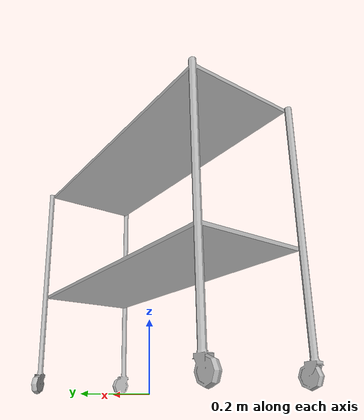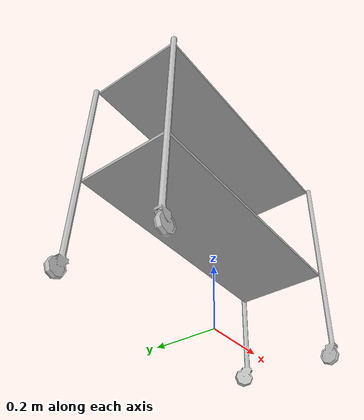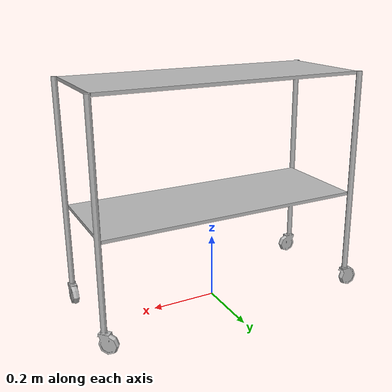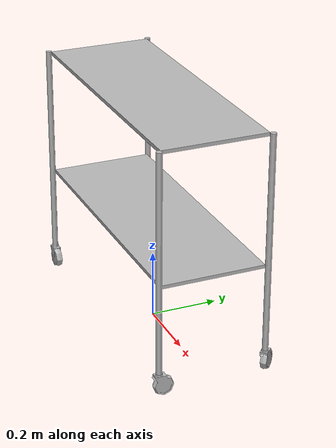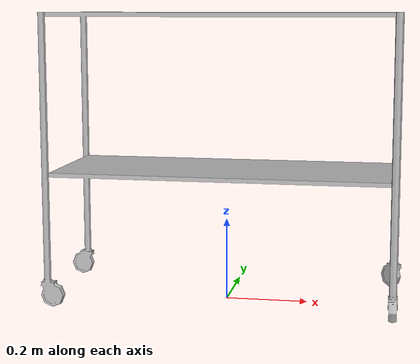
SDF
<?xml version="1.0"?>

<sdf version="1.6">
  <model name='SurgicalTrolley'>
   <static>true</static>
    <link name="body">
      <pose>0 0 0 0 0 0</pose>

      <visual name="visual">
        <geometry>
          <mesh>
            <uri>model://SurgicalTrolley/meshes/trolley.obj</uri>
          </mesh>
        </geometry>
      </visual>

      <collision name="collision">
        <geometry>
          <mesh>
            <uri>model://SurgicalTrolley/meshes/trolley.obj</uri>
          </mesh>
        </geometry>
      </collision>

    </link>
  </model>
</sdf>
